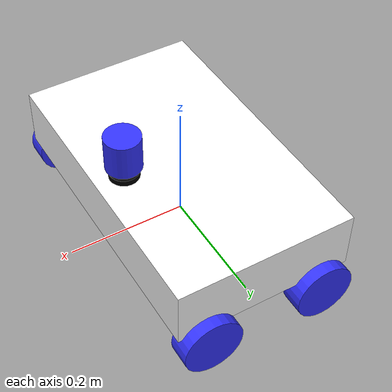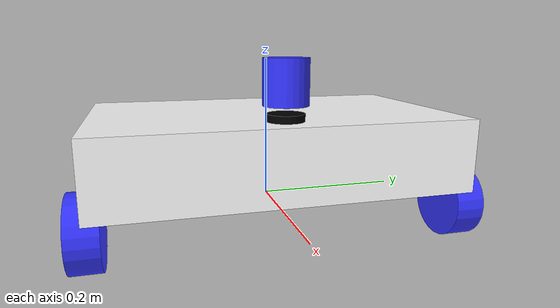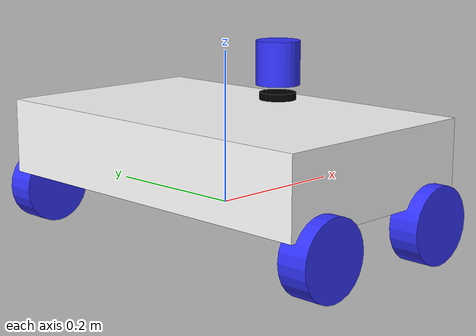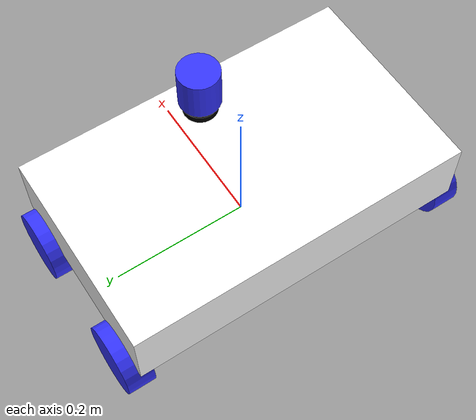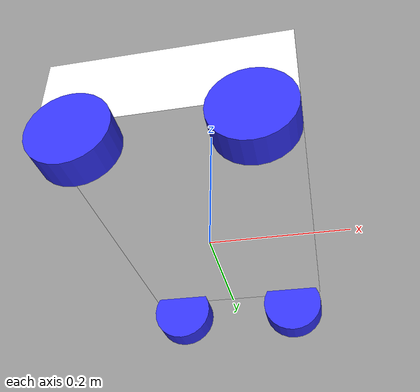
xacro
<?xml version="1.0"?>
    <robot name="treebo" xmlns:xacro="http://www.ros.org/wiki/xacro">

    <xacro:include filename="inertial_macros.xacro"/>

    <!-- Materials -->
    <material name="white"><color rgba="1 1 1 1"/></material>
    <material name="orange"><color rgba="1 0.3 0.1 1"/></material>
    <material name="blue"><color rgba="0.2 0.2 1 1"/></material>
    <material name="black"><color rgba="0 0 0 1"/></material>

    <!-- BASE LINK -->
    <link name="base_link"/>

    <!-- CHASSIS -->
    <link name="chassis">
        <visual>
            <origin xyz="0 0 0.075"/>
            <geometry><box size="0.30 0.50 0.10"/></geometry>
            <material name="white"/>
        </visual>
        <collision>
            <origin xyz="0 0 0.075"/>
            <geometry><box size="0.30 0.50 0.10"/></geometry>
        </collision>
        <xacro:inertial_box mass="0.4" x="0.30" y="0.50" z="0.10">
        <origin xyz="0 0 0.075" rpy="0 0 0"/>
        </xacro:inertial_box>
    </link>

    <joint name="chassis_joint" type="fixed">
        <parent link="base_link"/>
        <child link="chassis"/>
        <origin xyz="0 0 0"/>
    </joint>

    <!-- FRONT LEFT -->
    <link name="front_left_wheel">
        <visual>
            <geometry><cylinder radius="0.05" length="0.04"/></geometry>
            <material name="blue"/>
        </visual>
        <collision>
            <geometry><cylinder radius="0.05" length="0.04"/></geometry>
        </collision>
        <xacro:inertial_cylinder mass="0.1" length="0.04" radius="0.05">
            <origin xyz="0 0 0" rpy="0 0 0"/>
        </xacro:inertial_cylinder>
    </link>
    <joint name="front_left_wheel_joint" type="continuous">
        <parent link="base_link"/>
        <child  link="front_left_wheel"/>
        <origin xyz="0.10 0.25 0" rpy="-${pi/2} 0 0"/>
        <axis xyz="0 0 1"/>
    </joint>

    <!-- FRONT RIGHT -->
    <link name="front_right_wheel">
        <visual>
            <geometry><cylinder radius="0.05" length="0.04"/></geometry>
            <material name="blue"/>
        </visual>
        <collision>
            <geometry><cylinder radius="0.05" length="0.04"/></geometry>
        </collision>
        <xacro:inertial_cylinder mass="0.1" length="0.04" radius="0.05">
            <origin xyz="0 0 0" rpy="0 0 0"/>
        </xacro:inertial_cylinder>
    </link>
    <joint name="front_right_wheel_joint" type="continuous">
        <parent link="base_link"/>
        <child  link="front_right_wheel"/>
        <origin xyz="0.10 -0.25 0" rpy="${pi/2} 0 0"/>
        <axis xyz="0 0 -1"/>
    </joint>

    <!-- REAR LEFT -->
    <link name="rear_left_wheel">
        <visual>
            <geometry><cylinder radius="0.05" length="0.04"/></geometry>
            <material name="blue"/>
        </visual>
        <collision>
            <geometry><cylinder radius="0.05" length="0.04"/></geometry>
        </collision>
        <xacro:inertial_cylinder mass="0.1" length="0.04" radius="0.05">
            <origin xyz="0 0 0" rpy="0 0 0"/>
        </xacro:inertial_cylinder>
    </link>
    <joint name="rear_left_wheel_joint" type="continuous">
        <parent link="base_link"/>
        <child  link="rear_left_wheel"/>
        <origin xyz="-0.10 0.25 0" rpy="-${pi/2} 0 0"/>
        <axis xyz="0 0 1"/>
    </joint>

    <!-- REAR RIGHT -->
    <link name="rear_right_wheel">
        <visual>
            <geometry><cylinder radius="0.05" length="0.04"/></geometry>
            <material name="blue"/>
        </visual>
        <collision>
            <geometry><cylinder radius="0.05" length="0.04"/></geometry>
        </collision>
        <xacro:inertial_cylinder mass="0.1" length="0.04" radius="0.05">
            <origin xyz="0 0 0" rpy="0 0 0"/>
        </xacro:inertial_cylinder>
    </link>
    <joint name="rear_right_wheel_joint" type="continuous">
        <parent link="base_link"/>
        <child  link="rear_right_wheel"/>
        <origin xyz="-0.10 -0.25 0" rpy="${pi/2} 0 0"/>
        <axis xyz="0 0 -1"/>
    </joint>

    <link name="lidar_mount">
        <visual>
            <origin xyz="0 0 0" rpy="0 0 0"/>
            <geometry>
                <cylinder radius="0.025" length="0.02"/>
            </geometry>
            <material name="black">
                <color rgba="0 0 0 1"/>
            </material>
        </visual>
        <collision>
            <origin xyz="0 0 0" rpy="0 0 0"/>
            <geometry>
                <cylinder radius="0.025" length="0.02"/>
            </geometry>
        </collision>
        <inertial>
            <origin xyz="0 0 0" rpy="0 0 0"/>
            <mass value="0.05"/>
            <!-- 대략적인 관성치 m*r^2/2, m*(3r^2+h^2)/12 등 근사 -->
            <inertia ixx="3.0e-05" ixy="0" ixz="0" iyy="3.0e-05" iyz="0" izz="3.0e-05"/>
        </inertial>
    </link>

    <!-- 마운트를 섀시에 고정 -->
    <joint name="lidar_mount_fixed_joint" type="fixed">
        <parent link="chassis"/>
        <child link="lidar_mount"/>
        <!-- 섀시 위쪽 중앙에 배치. 필요시 xyz 조정 -->
        <origin xyz="0.1 0.0 0.125" rpy="0 0 0"/>
    </joint>

    <!-- 레이저 링크 라이다 본체를 단순 실린더로 표현 -->
    <link name="laser_link">
        <visual>
            <origin xyz="0 0 0" rpy="0 0 0"/>
            <geometry>
            <!-- 지름 약 6cm, 높이 6cm 정도의 라이다로 가정 -->
                <cylinder radius="0.03" length="0.06"/>
            </geometry>
            <material name="blue">
                <color rgba="0.2 0.2 1 1"/>
            </material>
        </visual>
        <collision>
            <origin xyz="0 0 0" rpy="0 0 0"/>
            <geometry>
                <cylinder radius="0.03" length="0.06"/>
            </geometry>
        </collision>
        <inertial>
            <origin xyz="0 0 0" rpy="0 0 0"/>
            <mass value="0.2"/>
            <inertia ixx="1.2e-04" ixy="0" ixz="0" iyy="1.2e-04" iyz="0" izz="1.6e-04"/>
        </inertial>
    </link>

    <!-- 레이저를 마운트 위에 고정 -->
    <joint name="laser_link_fixed_joint" type="fixed">
    <parent link="lidar_mount"/>
    <child link="laser_link"/>
    <origin xyz="0.0 0.0 0.05" rpy="0 0 0"/>
    </joint>

</robot>
